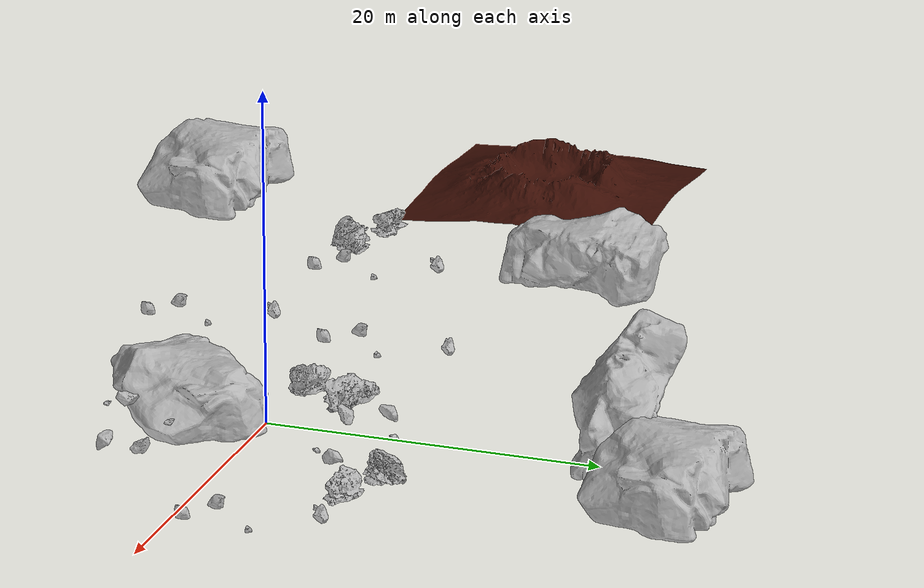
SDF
<sdf version="1.8">
 <world name="mars">
  <scene>
   <background>0.792 0.588 0.259 1.0</background>
   <ambient>0.6 0.4 0.3 1</ambient>
   <shadows>true</shadows>
  </scene>
  <physics name="ode_physics" default="true" type="ode">
   <max_step_size>0.001</max_step_size>
   <real_time_factor>1.0</real_time_factor>
   <gravity>0 0 -3.711</gravity>
  </physics>
  <spherical_coordinates>
   <surface_model>EARTH_WGS84</surface_model>
   <world_frame_orientation>ENU</world_frame_orientation>
   <latitude_deg>18.4447</latitude_deg>
   <longitude_deg>77.4508</longitude_deg>
   <elevation>0.0</elevation>
   <heading_deg>0</heading_deg>
  </spherical_coordinates>
  <plugin filename="gz-sim-physics-system" name="gz::sim::systems::Physics"/>
  <plugin filename="gz-sim-user-commands-system" name="gz::sim::systems::UserCommands"/>
  <plugin filename="gz-sim-scene-broadcaster-system" name="gz::sim::systems::SceneBroadcaster"/>
  <plugin filename="gz-sim-contact-system" name="gz::sim::systems::Contact"/>
  <plugin filename="gz-sim-sensors-system" name="gz::sim::systems::Sensors">
   <render_engine>ogre2</render_engine>
  </plugin>
  <plugin filename="gz-sim-imu-system" name="gz::sim::systems::Imu"/>
  <plugin filename="ignition-gazebo-navsat-system" name="ignition::gazebo::systems::NavSat"/>
  <light type="directional" name="sun">
   <pose>0 0 100 0 0 0</pose>
   <diffuse>0.8 0.6 0.5 1</diffuse>
   <specular>0.5 0.4 0.3 1</specular>
   <direction>-0.5 0.1 -0.9</direction>
  </light>
  <include><uri>model://rockformation</uri><name>rockformation</name><pose>1 -9 -0.65 0 0 1.75</pose></include>
  <include>
   <uri>model://rockformation</uri>
   <name>rockformation2</name>
   <pose>-1 4 -0.5 3.141593 -0.008 1.7915</pose>
  </include>
  <include>
   <uri>model://rockformation</uri>
   <name>rockformation3</name>
   <pose>10.401 4.11 -0.65 0 0 0</pose>
  </include>
  <include>
   <uri>model://rockformation</uri>
   <name>rockformation4</name>
   <pose>-18.77 -9.72 -0.75 0 0 0</pose>
  </include>
  <include>
   <uri>model://rockformation</uri>
   <name>rockformation5</name>
   <pose>-29.2 -2.79 -0.6 0 0 0</pose>
  </include>
  <include>
   <uri>model://rockformation</uri>
   <name>rockformation7</name>
   <pose>-17.39 2.28 -0.9 0 0 -0.2</pose>
  </include>
  <include><uri>model://jaggedrock</uri><name>jaggedrock</name><pose>5 7 -0.75 0 0 -0.7</pose></include>
  <include><uri>model://jaggedrock</uri><name>jaggedrock2</name><pose>-9 1 -1 -0.2499 0 -2.399</pose></include>
  <include><uri>model://jaggedrock</uri><name>jaggedrock3</name><pose>-33.515 -5 -.85 0 0 2.4</pose></include>
  <include><uri>model://rock9</uri><name>rock9</name><pose>-4.844 19.6 0 1.05 .6 0</pose></include>
  <include><uri>model://rock9</uri><name>rock9_1</name><pose>1.849 23.56 0 0 0 0</pose></include>
  <include><uri>model://rock9</uri><name>rock9_2</name><pose>-39.766 -19.65 -0.4 0 0 0</pose></include>
  <include><uri>model://rock9</uri><name>rock9_3</name><pose>-38.024 6.469 -2 0 0 -1.7</pose></include>
  <include><uri>model://rock9</uri><name>rock9_4</name><pose>-8.1 -8.18 -2.85 0 0 .85</pose></include>
  <include><uri>model://crater</uri><name>crater</name><pose>-48.502 1.5 -2.1 0 0 0</pose></include>
 </world>
</sdf>

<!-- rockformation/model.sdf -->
<sdf version='1.4'>
  <model name="rockformation">
    <static>true</static>
    <link name="link">
        <inertial>
            <mass>1</mass>
            <inertia>
              <ixx>0.166667</ixx>
              <ixy>0</ixy>
              <ixz>0</ixz>
              <iyy>0.166667</iyy>
              <iyz>0</iyz>
              <izz>0.166667</izz>
            </inertia>
            <pose frame=''>0 0 0 0 -0 0</pose>
         </inertial>

         <self_collide>1</self_collide>
         <kinematic>0</kinematic>
         <gravity>0</gravity>

          <collision name="collision">
            <geometry>
              <mesh>
                <uri>model://rockformation/meshes/rockformation.dae</uri>
              </mesh>
            </geometry>
            <surface>
              <friction>
                <ode>
                  <mu>1</mu>
                  <mu2>1</mu2>
                  <fdir1>0 0 0</fdir1>
                  <slip1>0</slip1>
                  <slip2>0</slip2>
                </ode>
                <torsional>
                  <coefficient>1</coefficient>
                  <patch_radius>0</patch_radius>
                  <surface_radius>0</surface_radius>
                  <use_patch_radius>1</use_patch_radius>
                  <ode>
                    <slip>0</slip>
                  </ode>
                </torsional>
              </friction>
              <bounce>
                <restitution_coefficient>0</restitution_coefficient>
                <threshold>1e+06</threshold>
              </bounce>
              <contact>
                <collide_without_contact>0</collide_without_contact>
                <collide_without_contact_bitmask>1</collide_without_contact_bitmask>
                <collide_bitmask>1</collide_bitmask>
                <ode>
                  <soft_cfm>0</soft_cfm>
                  <soft_erp>0.2</soft_erp>
                  <kp>1e+13</kp>
                  <kd>1</kd>
                  <max_vel>0.01</max_vel>
                  <min_depth>0</min_depth>
                </ode>
                <bullet>
                  <split_impulse>1</split_impulse>
                  <split_impulse_penetration_threshold>-0.01</split_impulse_penetration_threshold>
                  <soft_cfm>0</soft_cfm>
                  <soft_erp>0.2</soft_erp>
                  <kp>1e+13</kp>
                  <kd>1</kd>
                </bullet>
              </contact>
            </surface>
          </collision>

          <visual name="visual">
            <geometry>
              <mesh>
                <uri>model://rockformation/meshes/rockformation.dae</uri>
              </mesh>
            </geometry>
          </visual>
    </link>
  </model>
</sdf>

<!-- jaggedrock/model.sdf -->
<sdf version='1.4'>
  <model name="jaggedrock">
    <static>true</static>
    <link name="link">
        <inertial>
            <mass>1</mass>
            <inertia>
              <ixx>0.166667</ixx>
              <ixy>0</ixy>
              <ixz>0</ixz>
              <iyy>0.166667</iyy>
              <iyz>0</iyz>
              <izz>0.166667</izz>
            </inertia>
            <pose frame=''>0 0 0 0 -0 0</pose>
         </inertial>

         <self_collide>1</self_collide>
         <kinematic>0</kinematic>
         <gravity>0</gravity>

          <collision name="collision">
            <geometry>
              <mesh>
                <uri>model://jaggedrock/meshes/jaggedrock_texture.dae</uri>
              </mesh>
            </geometry>
            <surface>
              <friction>
                <ode>
                  <mu>1</mu>
                  <mu2>1</mu2>
                  <fdir1>0 0 0</fdir1>
                  <slip1>0</slip1>
                  <slip2>0</slip2>
                </ode>
                <torsional>
                  <coefficient>1</coefficient>
                  <patch_radius>0</patch_radius>
                  <surface_radius>0</surface_radius>
                  <use_patch_radius>1</use_patch_radius>
                  <ode>
                    <slip>0</slip>
                  </ode>
                </torsional>
              </friction>
              <bounce>
                <restitution_coefficient>0</restitution_coefficient>
                <threshold>1e+06</threshold>
              </bounce>
              <contact>
                <collide_without_contact>0</collide_without_contact>
                <collide_without_contact_bitmask>1</collide_without_contact_bitmask>
                <collide_bitmask>1</collide_bitmask>
                <ode>
                  <soft_cfm>0</soft_cfm>
                  <soft_erp>0.2</soft_erp>
                  <kp>1e+13</kp>
                  <kd>1</kd>
                  <max_vel>0.01</max_vel>
                  <min_depth>0</min_depth>
                </ode>
                <bullet>
                  <split_impulse>1</split_impulse>
                  <split_impulse_penetration_threshold>-0.01</split_impulse_penetration_threshold>
                  <soft_cfm>0</soft_cfm>
                  <soft_erp>0.2</soft_erp>
                  <kp>1e+13</kp>
                  <kd>1</kd>
                </bullet>
              </contact>
            </surface>
          </collision>

          <visual name="visual">
            <geometry>
              <mesh>
                <uri>model://jaggedrock/meshes/jaggedrock_texture.dae</uri>
              </mesh>
            </geometry>
          </visual>
    </link>
  </model>
</sdf>

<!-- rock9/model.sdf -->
<sdf version='1.4'>
  <model name="rock9">
    <static>true</static>
    <link name="link">
      <inertial>
        <mass>1</mass>
        <inertia>
          <ixx>0.166667</ixx>
          <ixy>0</ixy>
          <ixz>0</ixz>
          <iyy>0.166667</iyy>
          <iyz>0</iyz>
          <izz>0.166667</izz>
        </inertia>
        <pose frame=''>0 0 0 0 -0 0</pose>
      </inertial>

      <self_collide>1</self_collide>
      <kinematic>0</kinematic>
      <gravity>1</gravity>

      <collision name="collision">
        <geometry>
          <mesh>
            <uri>model://rock9/meshes/rock9.dae</uri>
          </mesh>
        </geometry>
        <surface>
          <friction>
            <ode>
              <mu>1</mu>
              <mu2>1</mu2>
              <fdir1>0 0 0</fdir1>
              <slip1>0</slip1>
              <slip2>0</slip2>
            </ode>
            <torsional>
              <coefficient>1</coefficient>
              <patch_radius>0</patch_radius>
              <surface_radius>0</surface_radius>
              <use_patch_radius>1</use_patch_radius>
              <ode>
                <slip>0</slip>
              </ode>
            </torsional>
          </friction>
          <bounce>
            <restitution_coefficient>0</restitution_coefficient>
            <threshold>1e+06</threshold>
          </bounce>
          <contact>
            <collide_without_contact>0</collide_without_contact>
            <collide_without_contact_bitmask>1</collide_without_contact_bitmask>
            <collide_bitmask>1</collide_bitmask>
            <ode>
              <soft_cfm>0</soft_cfm>
              <soft_erp>0.2</soft_erp>
              <kp>1e+13</kp>
              <kd>1</kd>
              <max_vel>0.01</max_vel>
              <min_depth>0</min_depth>
            </ode>
            <bullet>
              <split_impulse>1</split_impulse>
              <split_impulse_penetration_threshold>-0.01</split_impulse_penetration_threshold>
              <soft_cfm>0</soft_cfm>
              <soft_erp>0.2</soft_erp>
              <kp>1e+13</kp>
              <kd>1</kd>
            </bullet>
          </contact>
        </surface>
      </collision>

      <visual name="visual">
        <geometry>
          <mesh>
            <uri>model://rock9/meshes/rock9.dae</uri>
          </mesh>
        </geometry>
      </visual>
    </link>
  </model>
</sdf>

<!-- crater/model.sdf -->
<sdf version="1.4">
  <model name="crater">
      <static>1</static>
      <link name='link'>
        <inertial>
          <mass>0.25</mass>
          <inertia>
            <ixx>0.00015</ixx>
            <ixy>0.000000</ixy>
            <ixz>0.000000</ixz>
            <iyy>0.00015</iyy>
            <iyz>0.000000</iyz>
            <izz>0.00015</izz>
          </inertia>
        </inertial>
        <collision name='collision'>
          <geometry>
            <mesh>
              <uri>model://crater/meshes/crater_martian_red.dae</uri>
              <scale>1 1 1</scale>
            </mesh>
          </geometry>
          <surface>
            <friction>
              <ode>
                <mu>30.0</mu>
                <mu2>30.0</mu2>
              </ode>
            </friction>
            <contact>
              <ode>
                <kp>1000000.0</kp>
                <kd>100.0</kd>
                <max_vel>1.0</max_vel>
                <min_depth>0.002</min_depth>
              </ode>
            </contact>
          </surface>
        </collision>
        <visual name='visual'>
          <geometry>
            <mesh>
              <uri>model://crater/meshes/crater_martian_red.dae</uri>
              <scale>1 1 1</scale>
            </mesh>
          </geometry>
        </visual>
        <velocity_decay>
          <linear>0.000000</linear>
          <angular>0.000000</angular>
        </velocity_decay>
        <self_collide>0</self_collide>
        <kinematic>0</kinematic>
        <gravity>1</gravity>
      </link>
  </model>
</sdf>
